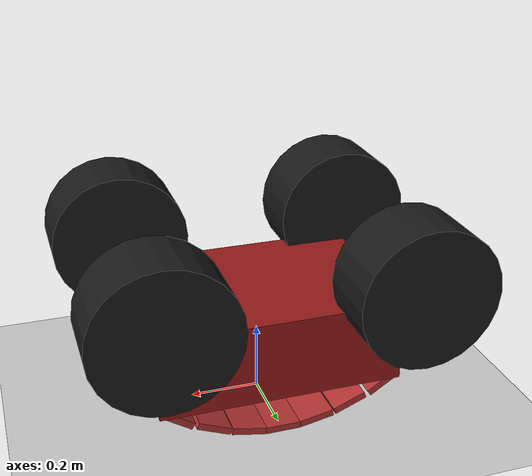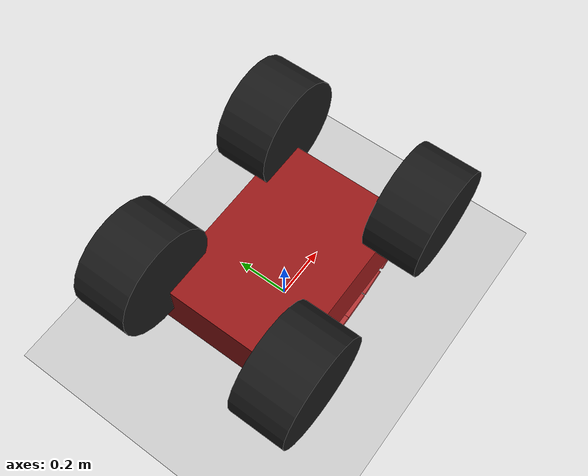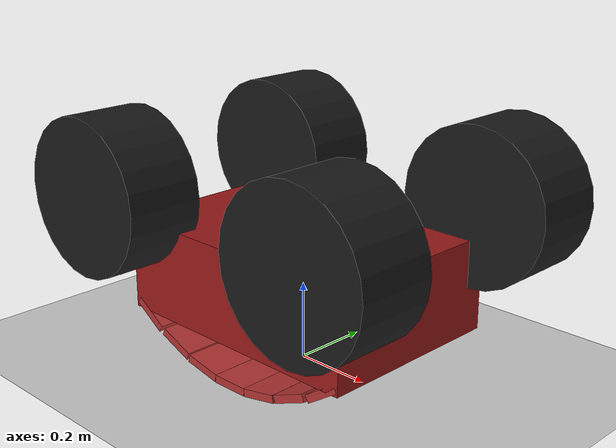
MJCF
<mujoco model="monster_truck_flip">
  <option gravity="0 0 -9.81" integrator="RK4" timestep="0.001"/>
  <compiler angle="radian"/>

  <default>
    <geom contype="1" conaffinity="1" friction="2.0 0.5 0.02"
          solimp="0.9 0.9 0.01" solref="0.005 1" density="800"/>
    <joint damping="0.2"/>
  </default>

  <visual>
    <quality shadowsize="4096"/>
    <map znear="0.01" zfar="20"/>
  </visual>

  <worldbody>
    <light name="sun" pos="0 0 10" dir="0 0 -1" diffuse="1 1 1"/>
    <geom name="ground" type="plane" size="10 10 0.1" rgba="0.8 0.8 0.8 1"/>

    <!-- Upside-down monster truck -->
    <body name="chassis" pos="0 0 0.23" quat="0 1 0 0">
      <freejoint/>

      <!-- IMU mounting point at chassis center -->
      <site name="imu_site" pos="0 0 0" size="0.01" rgba="0 1 0 1"/>

      <!-- Base rectangular chassis -->
      <!-- size = [0.35 0.25 0.12] => top at z = 0.12 in local coords -->
      <geom type="box" size="0.35 0.25 0.12" rgba="0.6 0.1 0.1 1" mass="450"/>

      <!-- Leftmost slab: covers [-0.35, -0.25] -->
      <geom name="roof_slab_1"
            type="box"
            size="0.05 0.25 0.01"
            pos="-0.30 0 0.130"
            euler="0 -0.583 0"
            rgba="0.7 0.2 0.2 1"
            mass="10"/>

      <!-- Next: covers [-0.25, -0.15] -->
      <geom name="roof_slab_2"
            type="box"
            size="0.05 0.25 0.01"
            pos="-0.20 0 0.179"
            euler="0 -0.389 0"
            rgba="0.7 0.2 0.2 1"
            mass="10"/>

      <!-- Next: covers [-0.15, -0.05] -->
      <geom name="roof_slab_3"
            type="box"
            size="0.05 0.25 0.01"
            pos="-0.10 0 0.210"
            euler="0 -0.194 0"
            rgba="0.7 0.2 0.2 1"
            mass="10"/>

      <!-- Center (top of arch): covers [-0.05, 0.05] -->
      <geom name="roof_slab_4"
            type="box"
            size="0.05 0.25 0.01"
            pos="0.00 0 0.220"
            euler="0 0 0"
            rgba="0.7 0.2 0.2 1"
            mass="10"/>

      <!-- Right side, mirrored: covers [0.05, 0.15] -->
      <geom name="roof_slab_5"
            type="box"
            size="0.05 0.25 0.01"
            pos="0.10 0 0.210"
            euler="0 0.194 0"
            rgba="0.7 0.2 0.2 1"
            mass="10"/>

      <!-- Covers [0.15, 0.25] -->
      <geom name="roof_slab_6"
            type="box"
            size="0.05 0.25 0.01"
            pos="0.20 0 0.179"
            euler="0 0.389 0"
            rgba="0.7 0.2 0.2 1"
            mass="10"/>

      <!-- Rightmost slab: covers [0.25, 0.35] -->
      <geom name="roof_slab_7"
            type="box"
            size="0.05 0.25 0.01"
            pos="0.30 0 0.130"
            euler="0 0.583 0"
            rgba="0.7 0.2 0.2 1"
            mass="10"/>

      <!-- Massive, heavy wheels -->
      <body name="wheel_fl" pos=" 0.35  0.30 -0.20">
        <joint name="j_fl" type="hinge" axis="0 1 0" damping="3"/>
        <geom type="cylinder" size="0.20 0.10" euler="1.57 0 0"
              rgba="0.1 0.1 0.1 1" mass="20"/>
        <geom name="mark_fl" type="sphere" size="0.02"
              pos="0 0 0.20" rgba="1 1 1 1"
              contype="0" conaffinity="0" density="0"/>
      </body>

      <body name="wheel_fr" pos=" 0.35 -0.30 -0.20">
        <joint name="j_fr" type="hinge" axis="0 1 0" damping="3"/>
        <geom type="cylinder" size="0.20 0.10" euler="1.57 0 0"
              rgba="0.1 0.1 0.1 1" mass="20"/>
        <geom name="mark_fr" type="sphere" size="0.02"
              pos="0 0 0.20" rgba="1 1 1 1"
              contype="0" conaffinity="0" density="0"/>
      </body>

      <body name="wheel_rl" pos="-0.35  0.30 -0.20">
        <joint name="j_rl" type="hinge" axis="0 1 0" damping="3"/>
        <geom type="cylinder" size="0.20 0.10" euler="1.57 0 0"
              rgba="0.1 0.1 0.1 1" mass="20"/>
        <geom name="mark_rl" type="sphere" size="0.02"
              pos="0 0 0.20" rgba="1 1 1 1"
              contype="0" conaffinity="0" density="0"/>
      </body>

      <body name="wheel_rr" pos="-0.35 -0.30 -0.20">
        <joint name="j_rr" type="hinge" axis="0 1 0" damping="3"/>
        <geom type="cylinder" size="0.20 0.10" euler="1.57 0 0"
              rgba="0.1 0.1 0.1 1" mass="20"/>
        <geom name="mark_rr" type="sphere" size="0.02"
              pos="0 0 0.20" rgba="1 1 1 1"
              contype="0" conaffinity="0" density="0"/>
      </body>
    </body>
  </worldbody>

  <actuator>
    <motor name="front_left_motor"  joint="j_fl" gear="450"/>
    <motor name="front_right_motor" joint="j_fr" gear="450"/>
    <motor name="rear_left_motor"   joint="j_rl" gear="450"/>
    <motor name="rear_right_motor"  joint="j_rr" gear="450"/>
  </actuator>

  <!-- IMU sensors: accelerometer + gyro + linear velocity at imu_site -->
  <sensor>
    <accelerometer name="imu_acc"  site="imu_site"/>
    <gyro          name="imu_gyro" site="imu_site"/>
    <velocimeter   name="imu_vel"  site="imu_site"/>
  </sensor>
</mujoco>
